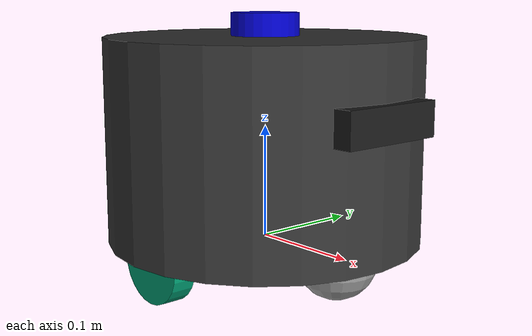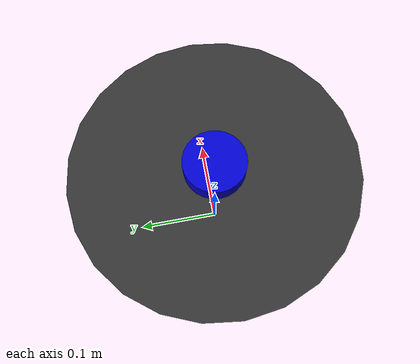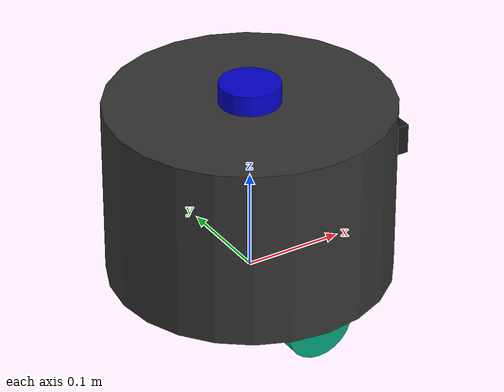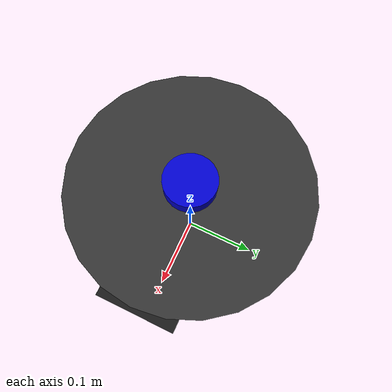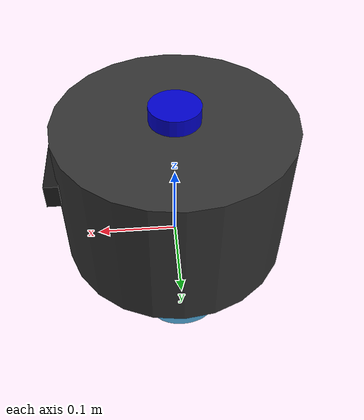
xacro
<?xml version="1.0" ?>
<robot name="independent_robot" xmlns:xacro="http://ros.org/wiki/xacro">

  <xacro:property name="base_radius" value="0.14"/>
  <xacro:property name="base_length" value="0.18"/>
  <xacro:property name="base_mass"   value="2.5"/>

  <xacro:property name="wheel_radius" value="0.035"/>
  <xacro:property name="wheel_length" value="0.02"/>
  <xacro:property name="wheel_mass"   value="0.2"/>
  <xacro:property name="wheel_track"  value="0.23"/>

  <link name="base_link">
    <visual>
      <origin xyz="0 0 ${base_length/2}" rpy="0 0 3.14159"/>
      <geometry>
        <cylinder radius="${base_radius}" length="${base_length}"/>
      </geometry>
      <material name="dark_grey">
        <color rgba="0.2 0.2 0.2 1.0"/>
      </material>
    </visual>
    <collision>
      <origin xyz="0 0 ${base_length/2}" rpy="0 0 0"/>
      <geometry>
        <cylinder radius="${base_radius}" length="${base_length}"/>
      </geometry>
    </collision>
    <inertial>
      <origin xyz="0 0 ${base_length/2}" rpy="0 0 0"/>
      <mass value="${base_mass}"/>
      <inertia ixx="0.0189" ixy="0.0" ixz="0.0" iyy="0.0189" iyz="0.0" izz="0.0245"/>
    </inertial>
  </link>

  <link name="drive_left_wheel">
    <visual>
      <geometry>
        <cylinder radius="${wheel_radius}" length="${wheel_length}"/>
      </geometry>
    </visual>
    <collision>
      <geometry>
        <cylinder radius="${wheel_radius}" length="${wheel_length}"/>
      </geometry>
    </collision>
    <inertial>
    <mass value="${wheel_mass}"/>
    <inertia ixx="0.000067" ixy="0.0" ixz="0.0"
            iyy="0.000067" iyz="0.0"
            izz="0.00012"/>
    </inertial>
  </link>
  <joint name="drive_left_wheel_joint" type="continuous">
    <parent link="base_link"/>
    <child link="drive_left_wheel"/>
    <origin xyz="0 ${wheel_track/2} 0" rpy="-1.5708 0 0"/>
    <axis xyz="0 0 1"/>
  </joint>

  <link name="drive_right_wheel">
    <visual>
      <geometry>
        <cylinder radius="${wheel_radius}" length="${wheel_length}"/>
      </geometry>
    </visual>
    <collision>
      <geometry>
        <cylinder radius="${wheel_radius}" length="${wheel_length}"/>
      </geometry>
    </collision>
    <inertial>
      <mass value="${wheel_mass}"/>
      <inertia ixx="0.000067" ixy="0.0" ixz="0.0"
              iyy="0.000067" iyz="0.0"
              izz="0.00012"/>
    </inertial>
  </link>

  <joint name="drive_right_wheel_joint" type="continuous">
    <parent link="base_link"/>
    <child link="drive_right_wheel"/>
    <origin xyz="0 -${wheel_track/2} 0" rpy="-1.5708 0 0"/>
    <axis xyz="0 0 1"/>
  </joint>

  <link name="caster_wheel">
    <visual>
      <geometry>
        <sphere radius="${wheel_radius}"/>
      </geometry>
      <material name="light_grey">
        <color rgba="0.6 0.6 0.6 1.0"/>
      </material>
    </visual>
    <collision>
      <geometry>
        <sphere radius="${wheel_radius}"/>
      </geometry>
    </collision>
    <inertial>
      <mass value="0.1"/>
      <inertia ixx="0.00004" ixy="0.0" ixz="0.0" iyy="0.00004" iyz="0.0" izz="0.00004"/>
    </inertial>
  </link>

  <joint name="caster_joint" type="fixed">
    <parent link="base_link"/>
    <child link="caster_wheel"/>
    <origin xyz="0.09 0 0" rpy="0 0 0"/>
  </joint>

  <link name="front_caster">
    <visual>
      <geometry>
        <sphere radius="${wheel_radius}"/>
      </geometry>
      <material name="light_grey">
        <color rgba="0.6 0.6 0.6 1.0"/>
      </material>
    </visual>
    <collision>
      <geometry>
        <sphere radius="${wheel_radius}"/>
      </geometry>
    </collision>
    <inertial>
      <mass value="0.1"/>
      <inertia ixx="0.00004" ixy="0.0" ixz="0.0" iyy="0.00004" iyz="0.0" izz="0.00004"/>
    </inertial>
  </link>

  <joint name="front_caster_joint" type="fixed">
    <parent link="base_link"/>
    <child link="front_caster"/>
    <origin xyz="-0.09 0 0" rpy="0 0 0"/>
  </joint>

  <link name="laser_frame">
    <visual>
      <geometry>
        <cylinder radius="0.03" length="0.02"/>
      </geometry>
      <material name="blue">
        <color rgba="0.0 0.0 0.8 1.0"/>
      </material>
    </visual>
  </link>

  <joint name="laser_joint" type="fixed">
    <parent link="base_link"/>
    <child link="laser_frame"/>
    <origin xyz="0 0 ${base_length + 0.01}" rpy="0 0 0"/>
  </joint>

  <!-- Physical dimensions of the OAK-D Pro body -->
  <xacro:property name="cam_w"        value="0.097"/>   <!-- width  (Y) -->
  <xacro:property name="cam_h"        value="0.030"/>   <!-- height (Z) -->
  <xacro:property name="cam_d"        value="0.017"/>   <!-- depth  (X) -->
  <xacro:property name="cam_mass"     value="0.061"/>
  <xacro:property name="stereo_base"  value="0.075"/>   <!-- stereo baseline -->

  <!-- Mount position: front of cylinder, 2/3 up the body -->
  <xacro:property name="cam_x"  value="${base_radius}"/>        <!-- flush with front face -->
  <xacro:property name="cam_y"  value="0.0"/>
  <xacro:property name="cam_z"  value="${base_length * 0.66}"/> <!-- ~12 cm above base origin -->

  <!-- ── Camera body link ── -->
  <link name="oakd_link">
    <visual>
      <origin xyz="0 0 0" rpy="0 0 0"/>
      <geometry>
        <box size="${cam_d} ${cam_w} ${cam_h}"/>
      </geometry>
      <material name="oakd_black">
        <color rgba="0.1 0.1 0.1 1.0"/>
      </material>
    </visual>
    <collision>
      <origin xyz="0 0 0" rpy="0 0 0"/>
      <geometry>
        <box size="${cam_d} ${cam_w} ${cam_h}"/>
      </geometry>
    </collision>
    <inertial>
      <mass value="${cam_mass}"/>
      <inertia
        ixx="${cam_mass/12*(cam_h*cam_h + cam_d*cam_d)}"
        ixy="0" ixz="0"
        iyy="${cam_mass/12*(cam_w*cam_w + cam_d*cam_d)}"
        iyz="0"
        izz="${cam_mass/12*(cam_w*cam_w + cam_h*cam_h)}"/>
    </inertial>
  </link>

  <joint name="oakd_joint" type="fixed">
    <parent link="base_link"/>
    <child  link="oakd_link"/>
    <origin xyz="${cam_x} ${cam_y} ${cam_z}" rpy="0 0 0"/>
  </joint>

  <!-- ── RGB camera frame (forward-facing, ROS body convention) ── -->
  <link name="oakd_rgb_camera_frame"/>
  <joint name="oakd_rgb_camera_joint" type="fixed">
    <parent link="oakd_link"/>
    <child  link="oakd_rgb_camera_frame"/>
    <origin xyz="0 0 0" rpy="0 0 0"/>
  </joint>

  <!-- ── RGB optical frame (camera convention: Z forward, X right, Y down) ── -->
  <link name="oakd_rgb_camera_optical_frame"/>
  <joint name="oakd_rgb_camera_optical_joint" type="fixed">
    <parent link="oakd_rgb_camera_frame"/>
    <child  link="oakd_rgb_camera_optical_frame"/>
    <origin xyz="0 0 0" rpy="${-pi/2} 0 ${-pi/2}"/>
  </joint>

  <!-- ── Left stereo camera frame ── -->
  <link name="oakd_left_camera_frame"/>
  <joint name="oakd_left_camera_joint" type="fixed">
    <parent link="oakd_link"/>
    <child  link="oakd_left_camera_frame"/>
    <origin xyz="0 ${stereo_base/2} 0" rpy="0 0 0"/>
  </joint>

  <link name="oakd_left_camera_optical_frame"/>
  <joint name="oakd_left_camera_optical_joint" type="fixed">
    <parent link="oakd_left_camera_frame"/>
    <child  link="oakd_left_camera_optical_frame"/>
    <origin xyz="0 0 0" rpy="${-pi/2} 0 ${-pi/2}"/>
  </joint>

  <!-- ── Right stereo camera frame ── -->
  <link name="oakd_right_camera_frame"/>
  <joint name="oakd_right_camera_joint" type="fixed">
    <parent link="oakd_link"/>
    <child  link="oakd_right_camera_frame"/>
    <origin xyz="0 ${-stereo_base/2} 0" rpy="0 0 0"/>
  </joint>

  <link name="oakd_right_camera_optical_frame"/>
  <joint name="oakd_right_camera_optical_joint" type="fixed">
    <parent link="oakd_right_camera_frame"/>
    <child  link="oakd_right_camera_optical_frame"/>
    <origin xyz="0 0 0" rpy="${-pi/2} 0 ${-pi/2}"/>
  </joint>

  <!-- ── Gazebo rgbd_camera sensor ── -->
  <gazebo reference="oakd_rgb_camera_frame">
    <sensor name="rgbd_camera" type="rgbd_camera">
      <always_on>1</always_on>
      <update_rate>15</update_rate>
      <camera>
        <horizontal_fov>1.047</horizontal_fov>
        <image>
          <width>640</width>
          <height>480</height>
          <format>RGB_INT8</format>
        </image>
        <clip>
          <near>0.19</near>
          <far>19.1</far>
        </clip>
        <depth_camera>
          <clip>
            <near>0.19</near>
            <far>19.1</far>
          </clip>
        </depth_camera>
        <noise>
          <type>gaussian</type>
          <mean>0.0</mean>
          <stddev>0.007</stddev>
        </noise>
      </camera>
      <topic>oakd</topic>
      <gz_frame_id>oakd_rgb_camera_optical_frame</gz_frame_id>
    </sensor>
  </gazebo>

  <gazebo reference="caster_wheel">
    <mu1>1.0</mu1>
    <mu2>1.0</mu2>
    <kp>1000000.0</kp>
    <kd>10.0</kd>
  </gazebo>

  <gazebo reference="front_caster">
    <mu1>1.0</mu1>
    <mu2>1.0</mu2>
    <kp>1000000.0</kp>
    <kd>10.0</kd>
  </gazebo>

  <gazebo reference="drive_left_wheel">
    <mu1>1.0</mu1>
    <mu2>1.0</mu2>
    <kp>1000000.0</kp>
    <kd>10.0</kd>
  </gazebo>

  <gazebo reference="drive_right_wheel">
    <mu1>1.0</mu1>
    <mu2>1.0</mu2>
    <kp>1000000.0</kp>
    <kd>10.0</kd>
  </gazebo>

  <gazebo>
    <plugin filename="gz-sim-diff-drive-system" name="gz::sim::systems::DiffDrive">
      <left_joint>drive_left_wheel_joint</left_joint>
      <right_joint>drive_right_wheel_joint</right_joint>
      <wheel_separation>${wheel_track}</wheel_separation>
      <wheel_radius>${wheel_radius}</wheel_radius>
      <topic>cmd_vel</topic>
    </plugin>

    <plugin filename="gz-sim-odometry-publisher-system" name="gz::sim::systems::OdometryPublisher">
      <odom_frame>odom</odom_frame>
      <robot_base_frame>base_link</robot_base_frame>
      <odom_publish_frequency>50</odom_publish_frequency>
      <odom_topic>/odom</odom_topic>
      <tf_topic>/tf</tf_topic>
      <dimensions>2</dimensions>
    </plugin>
  </gazebo>

  <gazebo>
    <plugin filename="gz-sim-joint-state-publisher-system" name="gz::sim::systems::JointStatePublisher">
      <topic>joint_states</topic>
    </plugin>
  </gazebo>

  <gazebo reference="laser_frame">
    <sensor name="gpu_lidar" type="gpu_lidar">
      <pose>0 0 0 0 0 0</pose>
      <update_rate>10</update_rate>
      <visualize>true</visualize>
      <topic>scan</topic>
      <gz_frame_id>laser_frame</gz_frame_id>
      <lidar>
        <scan>
          <horizontal>
            <samples>640</samples>
            <resolution>1</resolution>
            <min_angle>-3.141592</min_angle>
            <max_angle>3.141592</max_angle>
          </horizontal>
        </scan>
        <range>
          <min>0.08</min>
          <max>10.0</max>
        </range>
      </lidar>
      </sensor>
  </gazebo>

</robot>
